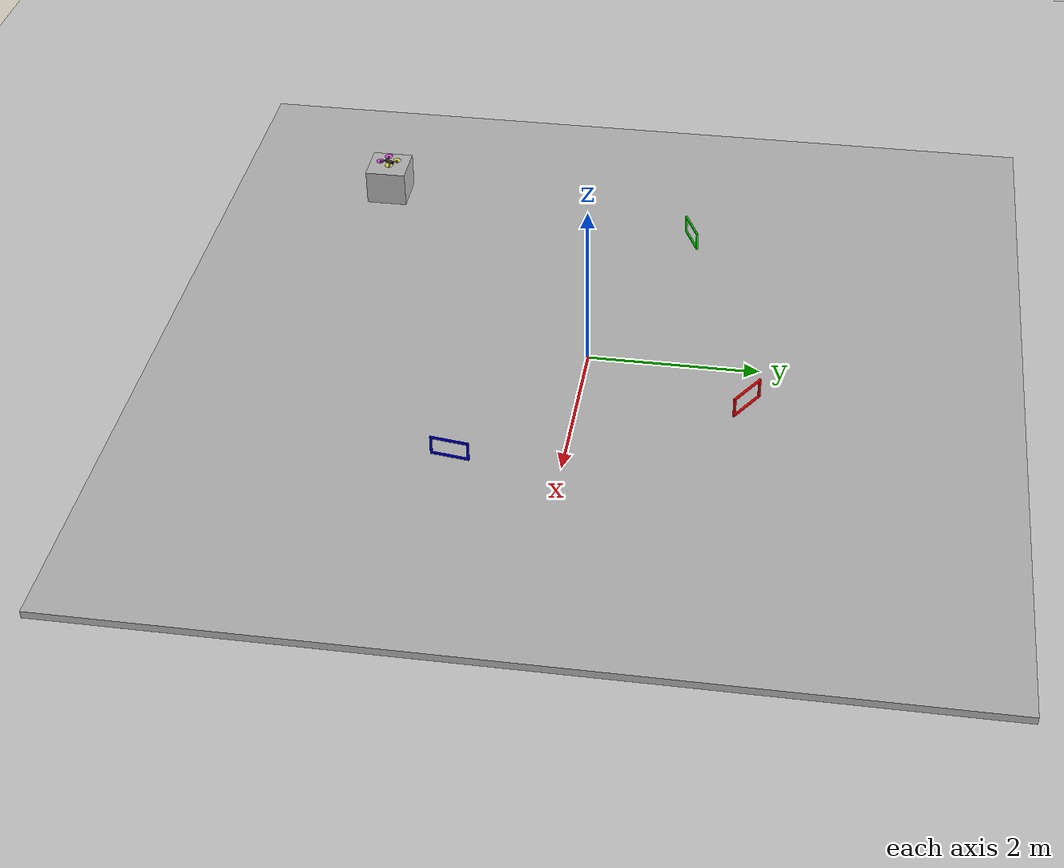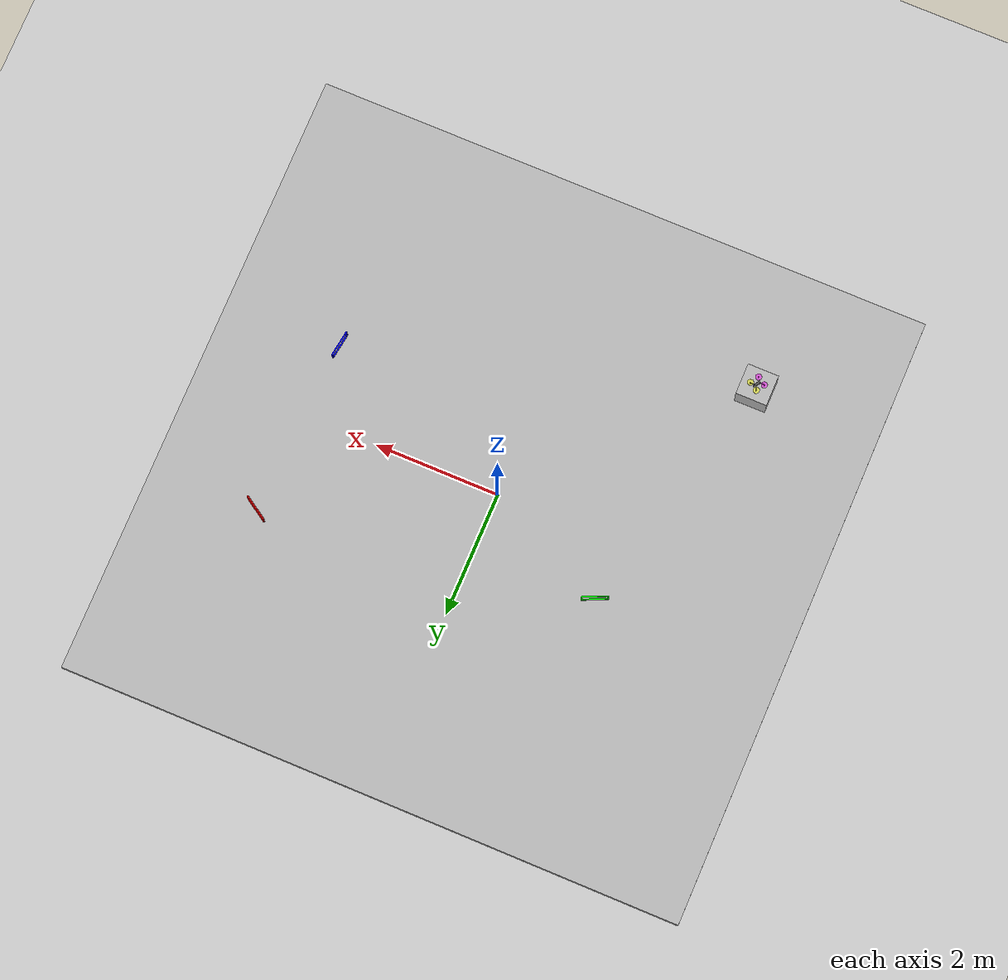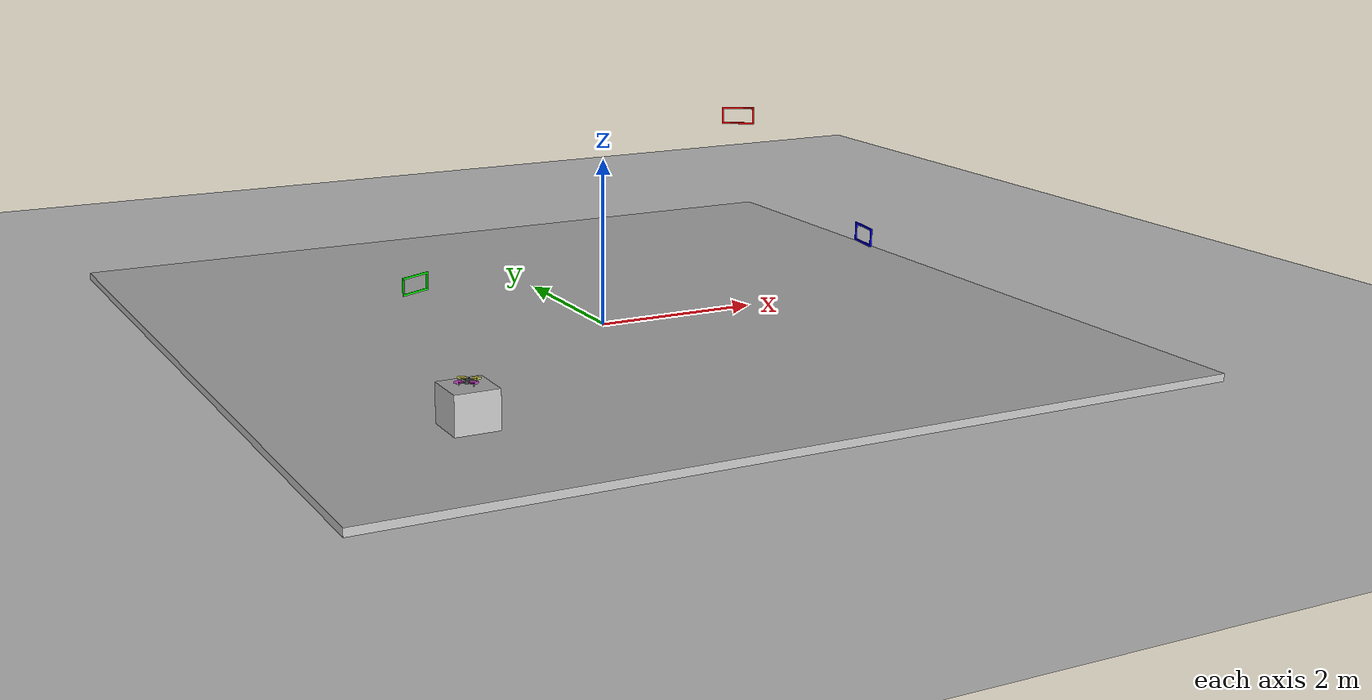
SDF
<?xml version="1.0" ?>
<sdf version="1.5">
  <world name="default">

    <!-- A global light source -->
    <scene>
	    <ambient>0.5 0.5 0.5 1.0</ambient>
	    <shadows>true</shadows>
    </scene>

    <include>
      <uri>model://sun</uri>
    </include>

    <!-- A ground plane -->
    <include>
      <uri>model://ground_plane</uri>
    </include>

    <!-- Coordinates -->
    <spherical_coordinates>
      <surface_model>EARTH_WGS84</surface_model>
      <latitude_deg>0</latitude_deg>
      <longitude_deg>0</longitude_deg>
      <elevation>0</elevation>
      <heading_deg>0</heading_deg>
    </spherical_coordinates>

    <!-- Camera -->
     <gui fullscreen='0'>
      <camera name='user_camera'>
        <pose>7.8971 -5.86361 6.86576 0 0.507643 2.3202</pose>
        <view_controller>orbit</view_controller>
        <projection_type>perspective</projection_type>
      </camera>
    </gui>

    <include>
      <name>abejorro</name>
      <uri>model://drone</uri>
      <pose>-3 -3 0.55 0 0 1</pose>
      <static>false</static>
      <plugin name="DroneControl" filename="libDroneControl.so">
        <id>1</id>
      </plugin>
    </include>

   <!-- Base de aterrizaje -->
    <include>
      <name>base_drone</name>
      <uri>model://base_drone</uri>
      <pose>-3 -3 0.26 0 0 0</pose>
    </include>   -->

   <!-- Area de vuelo -->
    <include>
      <name>floor</name>
      <uri>model://floor</uri>
      <pose>0 0 0.025 0 0 0</pose>
    </include>

    <!-- Frames -->
    <include>
      <name>frame_red</name>
      <uri>model://frame_red</uri>
      <pose>3 2 2 0 0 1</pose>
    </include>

    <include>
      <name>frame_green</name>
      <uri>model://frame_green</uri>
      <pose>-2 1 0.5 0 0 2</pose>
    </include>

    <include>
      <name>frame_blue</name>
      <uri>model://frame_blue</uri>
      <pose>3 -1 1 0 0 3</pose>
    </include>

    <plugin name="SIAM_God" filename="libSIAM_God.so"/>
  </world>
</sdf>

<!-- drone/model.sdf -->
<sdf version="1.5">
<model name="drone">

<static>false</static>

<link name='dronelink'>
    <!-- Rotores en distribucion cuadrada
         situados a 25 cms del centro de gravedad
    -->

    <visual name='fuselaje'>
        <pose>0 0 0 0 0 0</pose>
        <geometry>
          <box>
            <size>0.10 0.04 0.03</size>
          </box>
        </geometry>
        <material>
          <ambient>0.3 0.3 0.3 1</ambient>
          <diffuse>0.3 0.3 0.3 1</diffuse>
        </material>
    </visual>

    <collision name='fuselaje'>
        <pose>0 0 0 0 0 0</pose>
        <geometry>
          <box>
            <size>0.10 0.04 0.03</size>
          </box>
        </geometry>
        <surface>
          <friction>
            <ode>
              <mu>0.1</mu>
              <mu2>0.2</mu2>
              <slip1>1.0</slip1>
              <slip2>1.0</slip2>
            </ode>
          </friction>
        </surface>
    </collision>

    <visual name='camara'>
        <pose>0.065 0 0 0 0 0</pose>
        <geometry>
          <box>
            <size>0.03 0.02 0.02</size>
          </box>
        </geometry>
        <material>
          <ambient>0.2 0.2 0.2 1</ambient>
          <diffuse>0.2 0.2 0.2 1</diffuse>
        </material>
    </visual>

    <collision name='camara'>
        <pose>0.065 0 0 0 0 0</pose>
        <geometry>
          <box>
            <size>0.03 0.02 0.02</size>
          </box>
        </geometry>
        <surface>
          <friction>
            <ode>
              <mu>0.1</mu>
              <mu2>0.2</mu2>
              <slip1>1.0</slip1>
              <slip2>1.0</slip2>
            </ode>
          </friction>
        </surface>
    </collision>

	<sensor name='view_camera' type='camera'>
		<plugin name="camera_controller_2" filename="libgazebo_ros_camera.so">
			<alwaysOn>true</alwaysOn>
			<updateRate>0.0</updateRate>
        	<cameraName>view_camera</cameraName>
        	<robotNamespace>quadcopter</robotNamespace>
		</plugin>
        <pose>-0.3 0 0.2 0 0.3 0</pose>
        <camera name='view_camera'>
            <horizontal_fov>1.57</horizontal_fov>
            <image>
                <width>320</width>
                <height>240</height>
            </image>
            <clip>
                <near>0.01</near>
                <far>20</far>
            </clip>
        </camera>
        <always_on>1</always_on>
        <update_rate>10</update_rate>
        <visualize>0</visualize>
    </sensor>

    <sensor name='onboard_camera_sensor' type='camera'>
    		<plugin name="camera_controller" filename="libgazebo_ros_camera.so">
    			<alwaysOn>true</alwaysOn>
    			<updateRate>0.0</updateRate>
            	<cameraName>onboard_camera</cameraName>
            	<robotNamespace>quadcopter</robotNamespace>
    		</plugin>
            <pose>0.08 0 0 0 0</pose>
            <camera name='onboard_camera_'>
                <horizontal_fov>1.57</horizontal_fov>
                <image>
                    <width>320</width>
                    <height>240</height>
                </image>
                <clip>
                    <near>0.01</near>
                    <far>20</far>
                </clip>
            </camera>
            <always_on>1</always_on>
            <update_rate>10</update_rate>
            <visualize>0</visualize>
        </sensor>

    <visual name='brazo_NE'>
        <pose>0.0550 -0.0346 0 0 0 -1.0472</pose>
        <geometry>
          <box>
            <size>0.08 .01 .01</size>
          </box>
        </geometry>
        <material>
          <ambient>0.3 0.3 0.3 1</ambient>
          <diffuse>0.3 0.3 0.3 1</diffuse>
        </material>
    </visual>

    <collision name='brazo_NE'>
        <pose>0.0550 -0.0346 0 0 0 -1.0472</pose>
        <geometry>
          <box>
            <size>0.08 .01 .01</size>
          </box>
        </geometry>
        <surface>
          <friction>
            <ode>
              <mu>0.1</mu>
              <mu2>0.2</mu2>
              <slip1>1.0</slip1>
              <slip2>1.0</slip2>
            </ode>
          </friction>
        </surface>
    </collision>

    <visual name="motor_NE">
        <pose>0.0750 -0.0750 -0.01 0 0 0</pose>
        <geometry>
            <cylinder>
                <radius>.005</radius>
                <length>.04</length>
            </cylinder>
        </geometry>
        <material>
            <ambient>0 0 0 1</ambient>  <!--color Red Green Blue Alpha [0-1] -->
            <diffuse>0 0 0 1</diffuse>
        </material>
    </visual>

    <collision name="motor_NE">
        <pose>0.0750 -0.0750 -0.01 0 0 0</pose>
        <geometry>
            <cylinder>
                <radius>.005</radius>
                <length>.04</length>
            </cylinder>
        </geometry>
        <surface>
            <friction>
                <ode>
                <mu>100.0</mu>
                <mu2>50.0</mu2>
                <slip1>0.0</slip1>
                <slip2>0.0</slip2>
                </ode>
            </friction>
        </surface>
    </collision>

    <visual name="rotor_NE">
        <pose>0.0750 -0.0750 0.01 0 0 0</pose>
        <geometry>
            <cylinder>
                <radius>0.05</radius>
                <length>.005</length>
            </cylinder>
        </geometry>
	<material>
            <ambient>1 1 0 0.5</ambient>  <!--color Red Green Blue Alpha [0-1] -->
            <diffuse>1 1 0 0.5</diffuse>
        </material>
    </visual>

    <collision name="rotor_NE">
        <pose>0.0750 -0.0750 0.01 0 0 0</pose>
        <geometry>
            <cylinder>
                <radius>0.05</radius>
                <length>.005</length>
            </cylinder>
        </geometry>
        <surface>
            <friction>
                <ode>
                <mu>0.1</mu>
                <mu2>0.2</mu2>
                <slip1>1.0</slip1>
                <slip2>1.0</slip2>
                </ode>
            </friction>
        </surface>
    </collision>

    <visual name='brazo_NW'>
        <pose>0.0550 0.0346 0 0 0 1.0472</pose>
        <geometry>
          <box>
            <size>0.08 .01 .01</size>
          </box>
        </geometry>
        <material>
          <ambient>0.3 0.3 0.3 1</ambient>
          <diffuse>0.3 0.3 0.3 1</diffuse>
        </material>
    </visual>

    <collision name='brazo_NW'>
        <pose>0.0550 0.0346 0 0 0 1.0472</pose>
        <geometry>
          <box>
            <size>0.08 .01 .01</size>
          </box>
        </geometry>
        <surface>
          <friction>
            <ode>
              <mu>0.1</mu>
              <mu2>0.2</mu2>
              <slip1>1.0</slip1>
              <slip2>1.0</slip2>
            </ode>
          </friction>
        </surface>
    </collision>

    <visual name="motor_NW">
        <pose>0.0750 0.0750 -0.01 0 0 0</pose>
        <geometry>
            <cylinder>
                <radius>.005</radius>
                <length>.04</length>
            </cylinder>
        </geometry>
        <material>
            <ambient>0 0 0 1</ambient>  <!--color Red Green Blue Alpha [0-1] -->
            <diffuse>0 0 0 1</diffuse>
        </material>
    </visual>

    <collision name="motor_NW">
        <pose>0.0750 0.0750 -0.01 0 0 0</pose>
        <geometry>
            <cylinder>
                <radius>.005</radius>
                <length>.04</length>
            </cylinder>
        </geometry>
        <surface>
            <friction>
                <ode>
                <mu>100.0</mu>
                <mu2>50.0</mu2>
                <slip1>0.0</slip1>
                <slip2>0.0</slip2>
                </ode>
            </friction>
        </surface>
    </collision>

    <visual name="rotor_NW">
        <pose>0.0750 0.0750 0.01 0 0 0</pose>
        <geometry>
            <cylinder>
                <radius>0.05</radius>
                <length>.005</length>
            </cylinder>
        </geometry>
	<material>
            <ambient>1 1 0 0.5</ambient>  <!--color Red Green Blue Alpha [0-1] -->
            <diffuse>1 1 0 0.5</diffuse>
        </material>
    </visual>

    <collision name="rotor_NW">
        <pose>0.0750 0.0750 0.01 0 0 0</pose>
        <geometry>
            <cylinder>
                <radius>0.05</radius>
                <length>.005</length>
            </cylinder>
        </geometry>
        <surface>
            <friction>
                <ode>
                <mu>0.1</mu>
                <mu2>0.2</mu2>
                <slip1>1.0</slip1>
                <slip2>1.0</slip2>
                </ode>
            </friction>
        </surface>
    </collision>

    <visual name='brazo_SE'>
        <pose>-0.0550 -0.0346 0 0 0 1.0472</pose>
        <geometry>
          <box>
            <size>0.08 .01 .01</size>
          </box>
        </geometry>
        <material>
          <ambient>0.3 0.3 0.3 1</ambient>
          <diffuse>0.3 0.3 0.3 1</diffuse>
        </material>
    </visual>

    <collision name='brazo_SE'>
        <pose>-0.0550 -0.0346 0 0 0 1.0472</pose>
        <geometry>
          <box>
            <size>0.08 .01 .01</size>
          </box>
        </geometry>
        <surface>
          <friction>
            <ode>
              <mu>0.1</mu>
              <mu2>0.2</mu2>
              <slip1>1.0</slip1>
              <slip2>1.0</slip2>
            </ode>
          </friction>
        </surface>
    </collision>

    <visual name="motor_SE">
        <pose>-0.0750 -0.0750 -0.01 0 0 0</pose>
        <geometry>
            <cylinder>
                <radius>.005</radius>
                <length>.04</length>
            </cylinder>
        </geometry>
        <material>
            <ambient>0 0 0 1</ambient>  <!--color Red Green Blue Alpha [0-1] -->
            <diffuse>0 0 0 1</diffuse>
        </material>
    </visual>

    <collision name="motor_SE">
        <pose>-0.0750 -0.0750 -0.01 0 0 0</pose>
        <geometry>
            <cylinder>
                <radius>.005</radius>
                <length>.04</length>
            </cylinder>
        </geometry>
        <surface>
            <friction>
                <ode>
                <mu>100.0</mu>
                <mu2>50.0</mu2>
                <slip1>0.0</slip1>
                <slip2>0.0</slip2>
                </ode>
            </friction>
        </surface>
    </collision>

    <visual name="rotor_SE">
        <pose>-0.0750 -0.0750 0.01 0 0 0</pose>
        <geometry>
            <cylinder>
                <radius>0.05</radius>
                <length>.005</length>
            </cylinder>
        </geometry>
	<material>
            <ambient>1 0 1 0.5</ambient>  <!--color Red Green Blue Alpha [0-1] -->
            <diffuse>1 0 1 0.5</diffuse>
        </material>
    </visual>

    <collision name="rotor_SE">
        <pose>-0.0750 -0.0750 0.01 0 0 0</pose>
        <geometry>
            <cylinder>
                <radius>0.05</radius>
                <length>.005</length>
            </cylinder>
        </geometry>
        <surface>
            <friction>
                <ode>
                <mu>0.1</mu>
                <mu2>0.2</mu2>
                <slip1>1.0</slip1>
                <slip2>1.0</slip2>
                </ode>
            </friction>
        </surface>
    </collision>

    <visual name='brazo_SW'>
        <pose>-0.0550 0.0346 0 0 0 -1.0472</pose>
        <geometry>
          <box>
            <size>0.08 .01 .01</size>
          </box>
        </geometry>
        <material>
          <ambient>0.3 0.3 0.3 1</ambient>
          <diffuse>0.3 0.3 0.3 1</diffuse>
        </material>
    </visual>

    <collision name='brazo_SW'>
        <pose>-0.0550 0.0346 0 0 0 -1.0472</pose>
        <geometry>
          <box>
            <size>0.08 .01 .01</size>
          </box>
        </geometry>
        <surface>
          <friction>
            <ode>
              <mu>0.1</mu>
              <mu2>0.2</mu2>
              <slip1>1.0</slip1>
              <slip2>1.0</slip2>
            </ode>
          </friction>
        </surface>
    </collision>

    <visual name="motor_SW">
        <pose>-0.0750 0.0750 -0.01 0 0 0</pose>
        <geometry>
            <cylinder>
                <radius>.005</radius>
                <length>.04</length>
            </cylinder>
        </geometry>
        <material>
            <ambient>0 0 0 1</ambient>  <!--color Red Green Blue Alpha [0-1] -->
            <diffuse>0 0 0 1</diffuse>
        </material>
    </visual>

    <collision name="motor_SW">
        <pose>-0.0750 0.0750 -0.01 0 0 0</pose>
        <geometry>
            <cylinder>
                <radius>.005</radius>
                <length>.04</length>
            </cylinder>
        </geometry>
        <surface>
            <friction>
                <ode>
                <mu>100.0</mu>
                <mu2>50.0</mu2>
                <slip1>0.0</slip1>
                <slip2>0.0</slip2>
                </ode>
            </friction>
        </surface>
    </collision>

    <visual name="rotor_SW">
        <pose>-0.0750 0.0750 0.01 0 0 0</pose>
        <geometry>
            <cylinder>
                <radius>0.05</radius>
                <length>.005</length>
            </cylinder>
        </geometry>
	<material>
            <ambient>1 0 1 0.5</ambient>  <!--color Red Green Blue Alpha [0-1] -->
            <diffuse>1 0 1 0.5</diffuse>
        </material>
    </visual>

    <collision name="rotor_SW">
        <pose>-0.0750 0.0750 0.01 0 0 0</pose>
        <geometry>
            <cylinder>
                <radius>0.05</radius>
                <length>.005</length>
            </cylinder>
        </geometry>
        <surface>
            <friction>
                <ode>
                <mu>0.1</mu>
                <mu2>0.2</mu2>
                <slip1>1.0</slip1>
                <slip2>1.0</slip2>
                </ode>
            </friction>
        </surface>
    </collision>

    <inertial>
        <mass>0.300</mass>

        <inertia>                <!-- http://en.wikipedia.org/wiki/List_of_moments_of_inertia -->
          <ixx>0.001022500</ixx> <!-- for a box: ixx = 1/12 * mass * (y*y + z*z) -->
          <ixy>0.0</ixy>         <!-- for a box: ixy = 0 -->
          <ixz>0.0</ixz>         <!-- for a box: ixz = 0 -->
          <iyy>0.001022500</iyy> <!-- for a box: iyy = 1/12 * mass * (x*x + z*z) -->
          <iyz>0.0</iyz>         <!-- for a box: iyz = 0 -->
          <izz>0.002000000</izz> <!-- for a box: izz = 1/12 * mass * (x*x + y*y) -->
        </inertia>
    </inertial>

</link>
</model>
</sdf>

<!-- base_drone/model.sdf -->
<sdf version="1.5">

	<model name="base_drone">
	  <static>true</static>
	  <link name="link">

	    <collision name="collision">

		    <geometry>
		      <box>
		        <size>0.5 0.5 0.50</size>
		      </box>
		    </geometry>

        <surface>
          <friction>
            <ode>
              <mu>100.0</mu>
              <mu2>50.0</mu2>
              <slip1>0.0</slip1>
              <slip2>0.0</slip2>
            </ode>
          </friction>
        </surface>

	    </collision>

      <visual name="visual">
		    <geometry>
		      <box>
		        <size>0.5 0.5 0.50</size>
		      </box>
		    </geometry>
	    </visual>

	  </link>
	</model>

</sdf>

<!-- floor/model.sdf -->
<sdf version="1.5">

  <model name='floor'>
    <static>true</static>
    <link name='link'>
      <collision name='collisionsuelo'>
        <geometry>
          <box>
            <size>10 10 0.1</size>
          </box>
        </geometry>

        <surface>
          <friction>
            <ode>
              <mu>100.0</mu>
              <mu2>50.0</mu2>
              <slip1>0.0</slip1>
              <slip2>0.0</slip2>
            </ode>
          </friction>
        </surface>

      </collision>

      <visual name='visualsuelo'>
        <geometry>
          <box>
            <size>10 10 0.1</size>
          </box>
        </geometry>
        <material>
          <script>

            <uri>model://floor/scripts</uri>
            <uri>model://floor/materials</uri>
            <name>floorMat/Diffuse</name>
          </script>
        </material>
      </visual>
      <self_collide>0</self_collide>
      <kinematic>0</kinematic>
      <gravity>1</gravity>
    </link>
  </model>

</sdf>

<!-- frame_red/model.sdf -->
<sdf version="1.5">
<model name="frame_red">

<static>true</static>

<link name='framelink'>
    <!-- Marco de 40x20 cms. Borde de 3cms. -->

    <visual name='up'>
        <pose>0 0 0.10 0 0 0</pose>
        <geometry>
          <box>
            <size>0.02 0.42 0.02</size>
          </box>
        </geometry>
        <material>
          <ambient>1 0 0 1</ambient>
          <diffuse>1 0 0 1</diffuse>
        </material>
    </visual>

    <collision name='up_c'>
        <pose>0 0 0.10 0 0 0</pose>
        <geometry>
          <box>
            <size>0.02 0.42 0.02</size>
          </box>
        </geometry>
        <surface>
          <friction>
            <ode>
              <mu>0.1</mu>
              <mu2>0.2</mu2>
              <slip1>1.0</slip1>
              <slip2>1.0</slip2>
            </ode>
          </friction>
        </surface>
    </collision>

    <visual name='down'>
        <pose>0 0 -0.10 0 0 0</pose>
        <geometry>
          <box>
            <size>0.02 0.42 0.02</size>
          </box>
        </geometry>
        <material>
          <ambient>1 0 0 1</ambient>
          <diffuse>1 0 0 1</diffuse>
        </material>
    </visual>

    <collision name='down_c'>
        <pose>0 0 -0.10 0 0 0</pose>
        <geometry>
          <box>
            <size>0.02 0.42 0.02</size>
          </box>
        </geometry>
        <surface>
          <friction>
            <ode>
              <mu>0.1</mu>
              <mu2>0.2</mu2>
              <slip1>1.0</slip1>
              <slip2>1.0</slip2>
            </ode>
          </friction>
        </surface>
    </collision>

    <visual name='left'>
        <pose>0 -0.20 0 0 0 0</pose>
        <geometry>
          <box>
            <size>0.02 0.02 0.18</size>
          </box>
        </geometry>
        <material>
          <ambient>1 0 0 1</ambient>
          <diffuse>1 0 0 1</diffuse>
        </material>
    </visual>

    <collision name='left_c'>
        <pose>0 -0.20 0 0 0 0</pose>
        <geometry>
          <box>
            <size>0.02 0.02 0.18</size>
          </box>
        </geometry>
        <surface>
          <friction>
            <ode>
              <mu>0.1</mu>
              <mu2>0.2</mu2>
              <slip1>1.0</slip1>
              <slip2>1.0</slip2>
            </ode>
          </friction>
        </surface>
    </collision>

    <visual name='right'>
        <pose>0 0.20 0 0 0 0</pose>
        <geometry>
          <box>
            <size>0.02 0.02 0.18</size>
          </box>
        </geometry>
        <material>
          <ambient>1 0 0 1</ambient>
          <diffuse>1 0 0 1</diffuse>
        </material>
    </visual>

    <collision name='right_c'>
        <pose>0 0.20 0 0 0 0</pose>
        <geometry>
          <box>
            <size>0.02 0.02 0.18</size>
          </box>
        </geometry>
        <surface>
          <friction>
            <ode>
              <mu>0.1</mu>
              <mu2>0.2</mu2>
              <slip1>1.0</slip1>
              <slip2>1.0</slip2>
            </ode>
          </friction>
        </surface>
    </collision>

</link>

</model>

</sdf>

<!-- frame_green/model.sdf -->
<sdf version="1.5">
<model name="frame_green">

<static>true</static>

<link name='framelink'>
    <!-- Marco de 40x20 cms. Borde de 3cms. -->

    <visual name='up'>
        <pose>0 0 0.10 0 0 0</pose>
        <geometry>
          <box>
            <size>0.02 0.42 0.02</size>
          </box>
        </geometry>
        <material>
          <ambient>0 1 0 1</ambient>
          <diffuse>0 1 0 1</diffuse>
        </material>
    </visual>

    <collision name='up_c'>
        <pose>0 0 0.10 0 0 0</pose>
        <geometry>
          <box>
            <size>0.02 0.42 0.02</size>
          </box>
        </geometry>
        <surface>
          <friction>
            <ode>
              <mu>0.1</mu>
              <mu2>0.2</mu2>
              <slip1>1.0</slip1>
              <slip2>1.0</slip2>
            </ode>
          </friction>
        </surface>
    </collision>

    <visual name='down'>
        <pose>0 0 -0.10 0 0 0</pose>
        <geometry>
          <box>
            <size>0.02 0.42 0.02</size>
          </box>
        </geometry>
        <material>
          <ambient>0 1 0 1</ambient>
          <diffuse>0 1 0 1</diffuse>
        </material>
    </visual>

    <collision name='down_c'>
        <pose>0 0 -0.10 0 0 0</pose>
        <geometry>
          <box>
            <size>0.02 0.42 0.02</size>
          </box>
        </geometry>
        <surface>
          <friction>
            <ode>
              <mu>0.1</mu>
              <mu2>0.2</mu2>
              <slip1>1.0</slip1>
              <slip2>1.0</slip2>
            </ode>
          </friction>
        </surface>
    </collision>

    <visual name='left'>
        <pose>0 -0.20 0 0 0 0</pose>
        <geometry>
          <box>
            <size>0.02 0.02 0.18</size>
          </box>
        </geometry>
        <material>
          <ambient>0 1 0 1</ambient>
          <diffuse>0 1 0 1</diffuse>
        </material>
    </visual>

    <collision name='left_c'>
        <pose>0 -0.20 0 0 0 0</pose>
        <geometry>
          <box>
            <size>0.02 0.02 0.18</size>
          </box>
        </geometry>
        <surface>
          <friction>
            <ode>
              <mu>0.1</mu>
              <mu2>0.2</mu2>
              <slip1>1.0</slip1>
              <slip2>1.0</slip2>
            </ode>
          </friction>
        </surface>
    </collision>

    <visual name='right'>
        <pose>0 0.20 0 0 0 0</pose>
        <geometry>
          <box>
            <size>0.02 0.02 0.18</size>
          </box>
        </geometry>
        <material>
          <ambient>0 1 0 1</ambient>
          <diffuse>0 1 0 1</diffuse>
        </material>
    </visual>

    <collision name='right_c'>
        <pose>0 0.20 0 0 0 0</pose>
        <geometry>
          <box>
            <size>0.02 0.02 0.18</size>
          </box>
        </geometry>
        <surface>
          <friction>
            <ode>
              <mu>0.1</mu>
              <mu2>0.2</mu2>
              <slip1>1.0</slip1>
              <slip2>1.0</slip2>
            </ode>
          </friction>
        </surface>
    </collision>

</link>

</model>

</sdf>

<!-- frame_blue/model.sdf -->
<sdf version="1.5">
<model name="frame_blue">

<static>true</static>

<link name='framelink'>
    <!-- Marco de 40x20 cms. Borde de 3cms. -->

    <visual name='up'>
        <pose>0 0 0.10 0 0 0</pose>
        <geometry>
          <box>
            <size>0.02 0.42 0.02</size>
          </box>
        </geometry>
        <material>
          <ambient>0 0 1 1</ambient>
          <diffuse>0 0 1 1</diffuse>
        </material>
    </visual>

    <collision name='up_c'>
        <pose>0 0 0.10 0 0 0</pose>
        <geometry>
          <box>
            <size>0.02 0.42 0.02</size>
          </box>
        </geometry>
        <surface>
          <friction>
            <ode>
              <mu>0.1</mu>
              <mu2>0.2</mu2>
              <slip1>1.0</slip1>
              <slip2>1.0</slip2>
            </ode>
          </friction>
        </surface>
    </collision>

    <visual name='down'>
        <pose>0 0 -0.10 0 0 0</pose>
        <geometry>
          <box>
            <size>0.02 0.42 0.02</size>
          </box>
        </geometry>
        <material>
          <ambient>0 0 1 1</ambient>
          <diffuse>0 0 1 1</diffuse>
        </material>
    </visual>

    <collision name='down_c'>
        <pose>0 0 -0.10 0 0 0</pose>
        <geometry>
          <box>
            <size>0.02 0.42 0.02</size>
          </box>
        </geometry>
        <surface>
          <friction>
            <ode>
              <mu>0.1</mu>
              <mu2>0.2</mu2>
              <slip1>1.0</slip1>
              <slip2>1.0</slip2>
            </ode>
          </friction>
        </surface>
    </collision>

    <visual name='left'>
        <pose>0 -0.20 0 0 0 0</pose>
        <geometry>
          <box>
            <size>0.02 0.02 0.18</size>
          </box>
        </geometry>
        <material>
          <ambient>0 0 1 1</ambient>
          <diffuse>0 0 1 1</diffuse>
        </material>
    </visual>

    <collision name='left_c'>
        <pose>0 -0.20 0 0 0 0</pose>
        <geometry>
          <box>
            <size>0.02 0.02 0.18</size>
          </box>
        </geometry>
        <surface>
          <friction>
            <ode>
              <mu>0.1</mu>
              <mu2>0.2</mu2>
              <slip1>1.0</slip1>
              <slip2>1.0</slip2>
            </ode>
          </friction>
        </surface>
    </collision>

    <visual name='right'>
        <pose>0 0.20 0 0 0 0</pose>
        <geometry>
          <box>
            <size>0.02 0.02 0.18</size>
          </box>
        </geometry>
        <material>
          <ambient>0 0 1 1</ambient>
          <diffuse>0 0 1 1</diffuse>
        </material>
    </visual>

    <collision name='right_c'>
        <pose>0 0.20 0 0 0 0</pose>
        <geometry>
          <box>
            <size>0.02 0.02 0.18</size>
          </box>
        </geometry>
        <surface>
          <friction>
            <ode>
              <mu>0.1</mu>
              <mu2>0.2</mu2>
              <slip1>1.0</slip1>
              <slip2>1.0</slip2>
            </ode>
          </friction>
        </surface>
    </collision>

</link>

</model>

</sdf>
